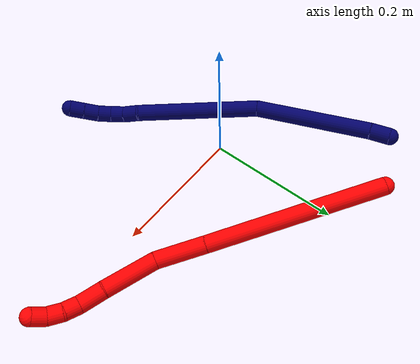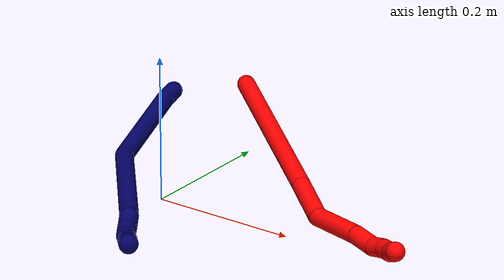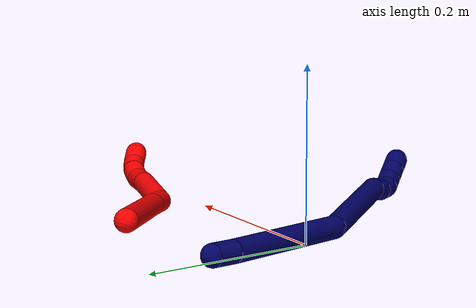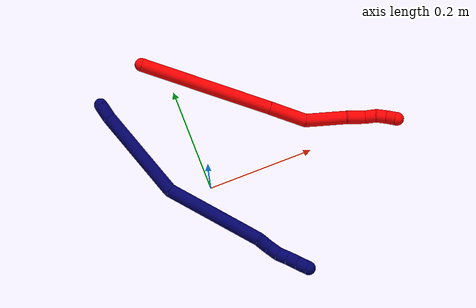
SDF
<sdf version="1.7">
 <world name="default">
  <model name="2">
   <static>0</static>
   <link name="2">
    <collision name="collision-cylinder-e_1_1_4">
     <pose>0.087385 -0.089154 -0.018681 1.77735 0.764645 0.919436</pose>
     <geometry><cylinder><radius>0.0125</radius><length>0.252456</length></cylinder></geometry>
     <surface>
      <friction><ode><mu>1.16</mu><mu2>1.16</mu2><slip1>0</slip1><slip2>0</slip2></ode></friction>
      <contact><ode><kp>1e+06</kp><kd>1</kd><max_vel>0</max_vel><min_depth>0.001</min_depth></ode></contact>
     </surface>
    </collision>
    <visual name="visual-cylinder-e_1_1_4">
     <pose>0.087385 -0.089154 -0.018681 1.77735 0.764645 0.919436</pose>
     <geometry><cylinder><radius>0.0125</radius><length>0.252456</length></cylinder></geometry>
     <material><ambient>1 0 0 1</ambient></material>
    </visual>
    <collision name="collision-cylinder-e_2_4_5">
     <pose>0.20015 -0.203439 -0.042627 1.77731 0.779574 0.936532</pose>
     <geometry><cylinder><radius>0.0125</radius><length>0.072207</length></cylinder></geometry>
     <surface>
      <friction><ode><mu>1.16</mu><mu2>1.16</mu2><slip1>0</slip1><slip2>0</slip2></ode></friction>
      <contact><ode><kp>1e+06</kp><kd>1</kd><max_vel>0</max_vel><min_depth>0.001</min_depth></ode></contact>
     </surface>
    </collision>
    <visual name="visual-cylinder-e_2_4_5">
     <pose>0.20015 -0.203439 -0.042627 1.77731 0.779574 0.936532</pose>
     <geometry><cylinder><radius>0.0125</radius><length>0.072207</length></cylinder></geometry>
     <material><ambient>1 0 0 1</ambient></material>
    </visual>
    <collision name="collision-cylinder-e_3_5_6">
     <pose>0.23873 -0.263422 -0.058104 1.85584 0.348614 0.461808</pose>
     <geometry><cylinder><radius>0.0125</radius><length>0.077281</length></cylinder></geometry>
     <surface>
      <friction><ode><mu>1.16</mu><mu2>1.16</mu2><slip1>0</slip1><slip2>0</slip2></ode></friction>
      <contact><ode><kp>1e+06</kp><kd>1</kd><max_vel>0</max_vel><min_depth>0.001</min_depth></ode></contact>
     </surface>
    </collision>
    <visual name="visual-cylinder-e_3_5_6">
     <pose>0.23873 -0.263422 -0.058104 1.85584 0.348614 0.461808</pose>
     <geometry><cylinder><radius>0.0125</radius><length>0.077281</length></cylinder></geometry>
     <material><ambient>1 0 0 1</ambient></material>
    </visual>
    <collision name="collision-cylinder-e_4_6_7">
     <pose>0.259366 -0.31421 -0.07107 1.74186 0.430955 0.508605</pose>
     <geometry><cylinder><radius>0.0125</radius><length>0.035603</length></cylinder></geometry>
     <surface>
      <friction><ode><mu>1.16</mu><mu2>1.16</mu2><slip1>0</slip1><slip2>0</slip2></ode></friction>
      <contact><ode><kp>1e+06</kp><kd>1</kd><max_vel>0</max_vel><min_depth>0.001</min_depth></ode></contact>
     </surface>
    </collision>
    <visual name="visual-cylinder-e_4_6_7">
     <pose>0.259366 -0.31421 -0.07107 1.74186 0.430955 0.508605</pose>
     <geometry><cylinder><radius>0.0125</radius><length>0.035603</length></cylinder></geometry>
     <material><ambient>1 0 0 1</ambient></material>
    </visual>
    <collision name="collision-cylinder-e_5_7_8">
     <pose>0.269559 -0.339489 -0.078681 2.05036 0.256098 0.417973</pose>
     <geometry><cylinder><radius>0.0125</radius><length>0.021769</length></cylinder></geometry>
     <surface>
      <friction><ode><mu>1.16</mu><mu2>1.16</mu2><slip1>0</slip1><slip2>0</slip2></ode></friction>
      <contact><ode><kp>1e+06</kp><kd>1</kd><max_vel>0</max_vel><min_depth>0.001</min_depth></ode></contact>
     </surface>
    </collision>
    <visual name="visual-cylinder-e_5_7_8">
     <pose>0.269559 -0.339489 -0.078681 2.05036 0.256098 0.417973</pose>
     <geometry><cylinder><radius>0.0125</radius><length>0.021769</length></cylinder></geometry>
     <material><ambient>1 0 0 1</ambient></material>
    </visual>
    <collision name="collision-cylinder-e_6_8_9">
     <pose>0.277186 -0.356533 -0.088141 2.10937 0.497253 0.841443</pose>
     <geometry><cylinder><radius>0.0125</radius><length>0.020417</length></cylinder></geometry>
     <surface>
      <friction><ode><mu>1.16</mu><mu2>1.16</mu2><slip1>0</slip1><slip2>0</slip2></ode></friction>
      <contact><ode><kp>1e+06</kp><kd>1</kd><max_vel>0</max_vel><min_depth>0.001</min_depth></ode></contact>
     </surface>
    </collision>
    <visual name="visual-cylinder-e_6_8_9">
     <pose>0.277186 -0.356533 -0.088141 2.10937 0.497253 0.841443</pose>
     <geometry><cylinder><radius>0.0125</radius><length>0.020417</length></cylinder></geometry>
     <material><ambient>1 0 0 1</ambient></material>
    </visual>
    <collision name="collision-cylinder-e_7_9_2">
     <pose>0.28617 -0.370036 -0.099962 2.4647 0.41811 1.08485</pose>
     <geometry><cylinder><radius>0.0125</radius><length>0.020267</length></cylinder></geometry>
     <surface>
      <friction><ode><mu>1.16</mu><mu2>1.16</mu2><slip1>0</slip1><slip2>0</slip2></ode></friction>
      <contact><ode><kp>1e+06</kp><kd>1</kd><max_vel>0</max_vel><min_depth>0.001</min_depth></ode></contact>
     </surface>
    </collision>
    <visual name="visual-cylinder-e_7_9_2">
     <pose>0.28617 -0.370036 -0.099962 2.4647 0.41811 1.08485</pose>
     <geometry><cylinder><radius>0.0125</radius><length>0.020267</length></cylinder></geometry>
     <material><ambient>1 0 0 1</ambient></material>
    </visual>
    <collision name="collision-sphere-2">
     <pose>0.290284 -0.375837 -0.107181 0 -0 0</pose>
     <geometry><sphere><radius>0.0125</radius></sphere></geometry>
     <surface>
      <friction><ode><mu>1.16</mu><mu2>1.16</mu2><slip1>0</slip1><slip2>0</slip2></ode></friction>
      <contact><ode><kp>1e+06</kp><kd>1</kd><max_vel>0</max_vel><min_depth>0.001</min_depth></ode></contact>
     </surface>
    </collision>
    <visual name="visual-sphere-2">
     <pose>0.290284 -0.375837 -0.107181 0 -0 0</pose>
     <geometry><sphere><radius>0.0125</radius></sphere></geometry>
     <material><ambient>1 0 0 1</ambient></material>
    </visual>
    <collision name="collision-sphere-9">
     <pose>0.282055 -0.364236 -0.092743 0 -0 0</pose>
     <geometry><sphere><radius>0.0125</radius></sphere></geometry>
     <surface>
      <friction><ode><mu>1.16</mu><mu2>1.16</mu2><slip1>0</slip1><slip2>0</slip2></ode></friction>
      <contact><ode><kp>1e+06</kp><kd>1</kd><max_vel>0</max_vel><min_depth>0.001</min_depth></ode></contact>
     </surface>
    </collision>
    <visual name="visual-sphere-9">
     <pose>0.282055 -0.364236 -0.092743 0 -0 0</pose>
     <geometry><sphere><radius>0.0125</radius></sphere></geometry>
     <material><ambient>1 0 0 1</ambient></material>
    </visual>
    <collision name="collision-sphere-4">
     <pose>0.17477 -0.178307 -0.037362 0 -0 0</pose>
     <geometry><sphere><radius>0.0125</radius></sphere></geometry>
     <surface>
      <friction><ode><mu>1.16</mu><mu2>1.16</mu2><slip1>0</slip1><slip2>0</slip2></ode></friction>
      <contact><ode><kp>1e+06</kp><kd>1</kd><max_vel>0</max_vel><min_depth>0.001</min_depth></ode></contact>
     </surface>
    </collision>
    <visual name="visual-sphere-4">
     <pose>0.17477 -0.178307 -0.037362 0 -0 0</pose>
     <geometry><sphere><radius>0.0125</radius></sphere></geometry>
     <material><ambient>1 0 0 1</ambient></material>
    </visual>
    <collision name="collision-sphere-1">
     <geometry><sphere><radius>0.0125</radius></sphere></geometry>
     <surface>
      <friction><ode><mu>1.16</mu><mu2>1.16</mu2><slip1>0</slip1><slip2>0</slip2></ode></friction>
      <contact><ode><kp>1e+06</kp><kd>1</kd><max_vel>0</max_vel><min_depth>0.001</min_depth></ode></contact>
     </surface>
    </collision>
    <visual name="visual-sphere-1">
     <geometry><sphere><radius>0.0125</radius></sphere></geometry>
     <material><ambient>1 0 0 1</ambient></material>
    </visual>
    <collision name="collision-sphere-8">
     <pose>0.272316 -0.348831 -0.083539 0 -0 0</pose>
     <geometry><sphere><radius>0.0125</radius></sphere></geometry>
     <surface>
      <friction><ode><mu>1.16</mu><mu2>1.16</mu2><slip1>0</slip1><slip2>0</slip2></ode></friction>
      <contact><ode><kp>1e+06</kp><kd>1</kd><max_vel>0</max_vel><min_depth>0.001</min_depth></ode></contact>
     </surface>
    </collision>
    <visual name="visual-sphere-8">
     <pose>0.272316 -0.348831 -0.083539 0 -0 0</pose>
     <geometry><sphere><radius>0.0125</radius></sphere></geometry>
     <material><ambient>1 0 0 1</ambient></material>
    </visual>
    <collision name="collision-sphere-5">
     <pose>0.22553 -0.228571 -0.047892 0 -0 0</pose>
     <geometry><sphere><radius>0.0125</radius></sphere></geometry>
     <surface>
      <friction><ode><mu>1.16</mu><mu2>1.16</mu2><slip1>0</slip1><slip2>0</slip2></ode></friction>
      <contact><ode><kp>1e+06</kp><kd>1</kd><max_vel>0</max_vel><min_depth>0.001</min_depth></ode></contact>
     </surface>
    </collision>
    <visual name="visual-sphere-5">
     <pose>0.22553 -0.228571 -0.047892 0 -0 0</pose>
     <geometry><sphere><radius>0.0125</radius></sphere></geometry>
     <material><ambient>1 0 0 1</ambient></material>
    </visual>
    <collision name="collision-sphere-6">
     <pose>0.251929 -0.298272 -0.068316 0 -0 0</pose>
     <geometry><sphere><radius>0.0125</radius></sphere></geometry>
     <surface>
      <friction><ode><mu>1.16</mu><mu2>1.16</mu2><slip1>0</slip1><slip2>0</slip2></ode></friction>
      <contact><ode><kp>1e+06</kp><kd>1</kd><max_vel>0</max_vel><min_depth>0.001</min_depth></ode></contact>
     </surface>
    </collision>
    <visual name="visual-sphere-6">
     <pose>0.251929 -0.298272 -0.068316 0 -0 0</pose>
     <geometry><sphere><radius>0.0125</radius></sphere></geometry>
     <material><ambient>1 0 0 1</ambient></material>
    </visual>
    <collision name="collision-sphere-7">
     <pose>0.266802 -0.330148 -0.073823 0 -0 0</pose>
     <geometry><sphere><radius>0.0125</radius></sphere></geometry>
     <surface>
      <friction><ode><mu>1.16</mu><mu2>1.16</mu2><slip1>0</slip1><slip2>0</slip2></ode></friction>
      <contact><ode><kp>1e+06</kp><kd>1</kd><max_vel>0</max_vel><min_depth>0.001</min_depth></ode></contact>
     </surface>
    </collision>
    <visual name="visual-sphere-7">
     <pose>0.266802 -0.330148 -0.073823 0 -0 0</pose>
     <geometry><sphere><radius>0.0125</radius></sphere></geometry>
     <material><ambient>1 0 0 1</ambient></material>
    </visual>
    <inertial>
     <pose>0.163048 -0.181821 -0.040706 0 -0 0</pose>
     <mass>0.5</mass>
     <inertia>
      <ixx>0.001487</ixx>
      <ixy>0</ixy>
      <ixz>0</ixz>
      <iyy>0.001358</iyy>
      <iyz>0</iyz>
      <izz>3.8e-05</izz>
     </inertia>
    </inertial>
   </link>
   <pose>-0.039913 0.249769 0.074961 3.06753 0.418776 -1.47309</pose>
  </model>
  <model name="7">
   <static>0</static>
   <link name="7">
    <collision name="collision-cylinder-e_1_1_4">
     <pose>0.013996 0.001533 -0.00381 -2.75911 1.28535 -2.6355</pose>
     <geometry><cylinder><radius>0.0125</radius><length>0.029172</length></cylinder></geometry>
     <surface>
      <friction><ode><mu>1.16</mu><mu2>1.16</mu2><slip1>0</slip1><slip2>0</slip2></ode></friction>
      <contact><ode><kp>1e+06</kp><kd>1</kd><max_vel>0</max_vel><min_depth>0.001</min_depth></ode></contact>
     </surface>
    </collision>
    <visual name="visual-cylinder-e_1_1_4">
     <pose>0.013996 0.001533 -0.00381 -2.75911 1.28535 -2.6355</pose>
     <geometry><cylinder><radius>0.0125</radius><length>0.029172</length></cylinder></geometry>
     <material><ambient>0.003922 0 0.403922 1</ambient></material>
    </visual>
    <collision name="collision-cylinder-e_2_4_5">
     <pose>0.112714 0.003352 -0.031156 -3.12944 1.29982 -3.1256</pose>
     <geometry><cylinder><radius>0.0125</radius><length>0.175864</length></cylinder></geometry>
     <surface>
      <friction><ode><mu>1.16</mu><mu2>1.16</mu2><slip1>0</slip1><slip2>0</slip2></ode></friction>
      <contact><ode><kp>1e+06</kp><kd>1</kd><max_vel>0</max_vel><min_depth>0.001</min_depth></ode></contact>
     </surface>
    </collision>
    <visual name="visual-cylinder-e_2_4_5">
     <pose>0.112714 0.003352 -0.031156 -3.12944 1.29982 -3.1256</pose>
     <geometry><cylinder><radius>0.0125</radius><length>0.175864</length></cylinder></geometry>
     <material><ambient>0.003922 0 0.403922 1</ambient></material>
    </visual>
    <collision name="collision-cylinder-e_3_5_6">
     <pose>0.278667 -0.028382 -0.086019 2.34526 1.06682 1.90368</pose>
     <geometry><cylinder><radius>0.0125</radius><length>0.185525</length></cylinder></geometry>
     <surface>
      <friction><ode><mu>1.16</mu><mu2>1.16</mu2><slip1>0</slip1><slip2>0</slip2></ode></friction>
      <contact><ode><kp>1e+06</kp><kd>1</kd><max_vel>0</max_vel><min_depth>0.001</min_depth></ode></contact>
     </surface>
    </collision>
    <visual name="visual-cylinder-e_3_5_6">
     <pose>0.278667 -0.028382 -0.086019 2.34526 1.06682 1.90368</pose>
     <geometry><cylinder><radius>0.0125</radius><length>0.185525</length></cylinder></geometry>
     <material><ambient>0.003922 0 0.403922 1</ambient></material>
    </visual>
    <collision name="collision-cylinder-e_4_6_7">
     <pose>0.371386 -0.063144 -0.118596 1.99877 1.3144 1.75222</pose>
     <geometry><cylinder><radius>0.0125</radius><length>0.023759</length></cylinder></geometry>
     <surface>
      <friction><ode><mu>1.16</mu><mu2>1.16</mu2><slip1>0</slip1><slip2>0</slip2></ode></friction>
      <contact><ode><kp>1e+06</kp><kd>1</kd><max_vel>0</max_vel><min_depth>0.001</min_depth></ode></contact>
     </surface>
    </collision>
    <visual name="visual-cylinder-e_4_6_7">
     <pose>0.371386 -0.063144 -0.118596 1.99877 1.3144 1.75222</pose>
     <geometry><cylinder><radius>0.0125</radius><length>0.023759</length></cylinder></geometry>
     <material><ambient>0.003922 0 0.403922 1</ambient></material>
    </visual>
    <collision name="collision-cylinder-e_5_7_8">
     <pose>0.392923 -0.068526 -0.123025 2.44816 1.18047 2.15233</pose>
     <geometry><cylinder><radius>0.0125</radius><length>0.021725</length></cylinder></geometry>
     <surface>
      <friction><ode><mu>1.16</mu><mu2>1.16</mu2><slip1>0</slip1><slip2>0</slip2></ode></friction>
      <contact><ode><kp>1e+06</kp><kd>1</kd><max_vel>0</max_vel><min_depth>0.001</min_depth></ode></contact>
     </surface>
    </collision>
    <visual name="visual-cylinder-e_5_7_8">
     <pose>0.392923 -0.068526 -0.123025 2.44816 1.18047 2.15233</pose>
     <geometry><cylinder><radius>0.0125</radius><length>0.021725</length></cylinder></geometry>
     <material><ambient>0.003922 0 0.403922 1</ambient></material>
    </visual>
    <collision name="collision-cylinder-e_6_8_9">
     <pose>0.410839 -0.075037 -0.131621 2.52142 0.86868 1.93263</pose>
     <geometry><cylinder><radius>0.0125</radius><length>0.020617</length></cylinder></geometry>
     <surface>
      <friction><ode><mu>1.16</mu><mu2>1.16</mu2><slip1>0</slip1><slip2>0</slip2></ode></friction>
      <contact><ode><kp>1e+06</kp><kd>1</kd><max_vel>0</max_vel><min_depth>0.001</min_depth></ode></contact>
     </surface>
    </collision>
    <visual name="visual-cylinder-e_6_8_9">
     <pose>0.410839 -0.075037 -0.131621 2.52142 0.86868 1.93263</pose>
     <geometry><cylinder><radius>0.0125</radius><length>0.020617</length></cylinder></geometry>
     <material><ambient>0.003922 0 0.403922 1</ambient></material>
    </visual>
    <collision name="collision-cylinder-e_7_9_10">
     <pose>0.426616 -0.082124 -0.143887 2.70239 0.80742 2.17862</pose>
     <geometry><cylinder><radius>0.0125</radius><length>0.021887</length></cylinder></geometry>
     <surface>
      <friction><ode><mu>1.16</mu><mu2>1.16</mu2><slip1>0</slip1><slip2>0</slip2></ode></friction>
      <contact><ode><kp>1e+06</kp><kd>1</kd><max_vel>0</max_vel><min_depth>0.001</min_depth></ode></contact>
     </surface>
    </collision>
    <visual name="visual-cylinder-e_7_9_10">
     <pose>0.426616 -0.082124 -0.143887 2.70239 0.80742 2.17862</pose>
     <geometry><cylinder><radius>0.0125</radius><length>0.021887</length></cylinder></geometry>
     <material><ambient>0.003922 0 0.403922 1</ambient></material>
    </visual>
    <collision name="collision-cylinder-e_8_10_2">
     <pose>0.44226 -0.08847 -0.157473 2.70673 0.805736 2.18509</pose>
     <geometry><cylinder><radius>0.0125</radius><length>0.021452</length></cylinder></geometry>
     <surface>
      <friction><ode><mu>1.16</mu><mu2>1.16</mu2><slip1>0</slip1><slip2>0</slip2></ode></friction>
      <contact><ode><kp>1e+06</kp><kd>1</kd><max_vel>0</max_vel><min_depth>0.001</min_depth></ode></contact>
     </surface>
    </collision>
    <visual name="visual-cylinder-e_8_10_2">
     <pose>0.44226 -0.08847 -0.157473 2.70673 0.805736 2.18509</pose>
     <geometry><cylinder><radius>0.0125</radius><length>0.021452</length></cylinder></geometry>
     <material><ambient>0.003922 0 0.403922 1</ambient></material>
    </visual>
    <collision name="collision-sphere-2">
     <pose>0.449997 -0.0916 -0.16421 0 -0 0</pose>
     <geometry><sphere><radius>0.0125</radius></sphere></geometry>
     <surface>
      <friction><ode><mu>1.16</mu><mu2>1.16</mu2><slip1>0</slip1><slip2>0</slip2></ode></friction>
      <contact><ode><kp>1e+06</kp><kd>1</kd><max_vel>0</max_vel><min_depth>0.001</min_depth></ode></contact>
     </surface>
    </collision>
    <visual name="visual-sphere-2">
     <pose>0.449997 -0.0916 -0.16421 0 -0 0</pose>
     <geometry><sphere><radius>0.0125</radius></sphere></geometry>
     <material><ambient>0.003922 0 0.403922 1</ambient></material>
    </visual>
    <collision name="collision-sphere-10">
     <pose>0.434523 -0.085341 -0.150735 0 -0 0</pose>
     <geometry><sphere><radius>0.0125</radius></sphere></geometry>
     <surface>
      <friction><ode><mu>1.16</mu><mu2>1.16</mu2><slip1>0</slip1><slip2>0</slip2></ode></friction>
      <contact><ode><kp>1e+06</kp><kd>1</kd><max_vel>0</max_vel><min_depth>0.001</min_depth></ode></contact>
     </surface>
    </collision>
    <visual name="visual-sphere-10">
     <pose>0.434523 -0.085341 -0.150735 0 -0 0</pose>
     <geometry><sphere><radius>0.0125</radius></sphere></geometry>
     <material><ambient>0.003922 0 0.403922 1</ambient></material>
    </visual>
    <collision name="collision-sphere-9">
     <pose>0.418709 -0.078906 -0.137039 0 -0 0</pose>
     <geometry><sphere><radius>0.0125</radius></sphere></geometry>
     <surface>
      <friction><ode><mu>1.16</mu><mu2>1.16</mu2><slip1>0</slip1><slip2>0</slip2></ode></friction>
      <contact><ode><kp>1e+06</kp><kd>1</kd><max_vel>0</max_vel><min_depth>0.001</min_depth></ode></contact>
     </surface>
    </collision>
    <visual name="visual-sphere-9">
     <pose>0.418709 -0.078906 -0.137039 0 -0 0</pose>
     <geometry><sphere><radius>0.0125</radius></sphere></geometry>
     <material><ambient>0.003922 0 0.403922 1</ambient></material>
    </visual>
    <collision name="collision-sphere-4">
     <pose>0.027991 0.003066 -0.007621 0 -0 0</pose>
     <geometry><sphere><radius>0.0125</radius></sphere></geometry>
     <surface>
      <friction><ode><mu>1.16</mu><mu2>1.16</mu2><slip1>0</slip1><slip2>0</slip2></ode></friction>
      <contact><ode><kp>1e+06</kp><kd>1</kd><max_vel>0</max_vel><min_depth>0.001</min_depth></ode></contact>
     </surface>
    </collision>
    <visual name="visual-sphere-4">
     <pose>0.027991 0.003066 -0.007621 0 -0 0</pose>
     <geometry><sphere><radius>0.0125</radius></sphere></geometry>
     <material><ambient>0.003922 0 0.403922 1</ambient></material>
    </visual>
    <collision name="collision-sphere-1">
     <geometry><sphere><radius>0.0125</radius></sphere></geometry>
     <surface>
      <friction><ode><mu>1.16</mu><mu2>1.16</mu2><slip1>0</slip1><slip2>0</slip2></ode></friction>
      <contact><ode><kp>1e+06</kp><kd>1</kd><max_vel>0</max_vel><min_depth>0.001</min_depth></ode></contact>
     </surface>
    </collision>
    <visual name="visual-sphere-1">
     <geometry><sphere><radius>0.0125</radius></sphere></geometry>
     <material><ambient>0.003922 0 0.403922 1</ambient></material>
    </visual>
    <collision name="collision-sphere-8">
     <pose>0.402968 -0.071168 -0.126204 0 -0 0</pose>
     <geometry><sphere><radius>0.0125</radius></sphere></geometry>
     <surface>
      <friction><ode><mu>1.16</mu><mu2>1.16</mu2><slip1>0</slip1><slip2>0</slip2></ode></friction>
      <contact><ode><kp>1e+06</kp><kd>1</kd><max_vel>0</max_vel><min_depth>0.001</min_depth></ode></contact>
     </surface>
    </collision>
    <visual name="visual-sphere-8">
     <pose>0.402968 -0.071168 -0.126204 0 -0 0</pose>
     <geometry><sphere><radius>0.0125</radius></sphere></geometry>
     <material><ambient>0.003922 0 0.403922 1</ambient></material>
    </visual>
    <collision name="collision-sphere-5">
     <pose>0.197438 0.003638 -0.054691 0 -0 0</pose>
     <geometry><sphere><radius>0.0125</radius></sphere></geometry>
     <surface>
      <friction><ode><mu>1.16</mu><mu2>1.16</mu2><slip1>0</slip1><slip2>0</slip2></ode></friction>
      <contact><ode><kp>1e+06</kp><kd>1</kd><max_vel>0</max_vel><min_depth>0.001</min_depth></ode></contact>
     </surface>
    </collision>
    <visual name="visual-sphere-5">
     <pose>0.197438 0.003638 -0.054691 0 -0 0</pose>
     <geometry><sphere><radius>0.0125</radius></sphere></geometry>
     <material><ambient>0.003922 0 0.403922 1</ambient></material>
    </visual>
    <collision name="collision-sphere-6">
     <pose>0.359895 -0.060403 -0.117346 0 -0 0</pose>
     <geometry><sphere><radius>0.0125</radius></sphere></geometry>
     <surface>
      <friction><ode><mu>1.16</mu><mu2>1.16</mu2><slip1>0</slip1><slip2>0</slip2></ode></friction>
      <contact><ode><kp>1e+06</kp><kd>1</kd><max_vel>0</max_vel><min_depth>0.001</min_depth></ode></contact>
     </surface>
    </collision>
    <visual name="visual-sphere-6">
     <pose>0.359895 -0.060403 -0.117346 0 -0 0</pose>
     <geometry><sphere><radius>0.0125</radius></sphere></geometry>
     <material><ambient>0.003922 0 0.403922 1</ambient></material>
    </visual>
    <collision name="collision-sphere-7">
     <pose>0.382878 -0.065884 -0.119847 0 -0 0</pose>
     <geometry><sphere><radius>0.0125</radius></sphere></geometry>
     <surface>
      <friction><ode><mu>1.16</mu><mu2>1.16</mu2><slip1>0</slip1><slip2>0</slip2></ode></friction>
      <contact><ode><kp>1e+06</kp><kd>1</kd><max_vel>0</max_vel><min_depth>0.001</min_depth></ode></contact>
     </surface>
    </collision>
    <visual name="visual-sphere-7">
     <pose>0.382878 -0.065884 -0.119847 0 -0 0</pose>
     <geometry><sphere><radius>0.0125</radius></sphere></geometry>
     <material><ambient>0.003922 0 0.403922 1</ambient></material>
    </visual>
    <inertial>
     <pose>0.23317 -0.025726 -0.072561 0 -0 0</pose>
     <mass>0.5</mass>
     <inertia>
      <ixx>7.2e-05</ixx>
      <ixy>0</ixy>
      <ixz>0</ixz>
      <iyy>0.001153</iyy>
      <iyz>0</iyz>
      <izz>-0.000752</izz>
     </inertia>
    </inertial>
   </link>
   <pose>-0.136438 0.210216 0.055716 3.02372 0.348941 -1.27047</pose>
  </model>
 </world>
</sdf>
